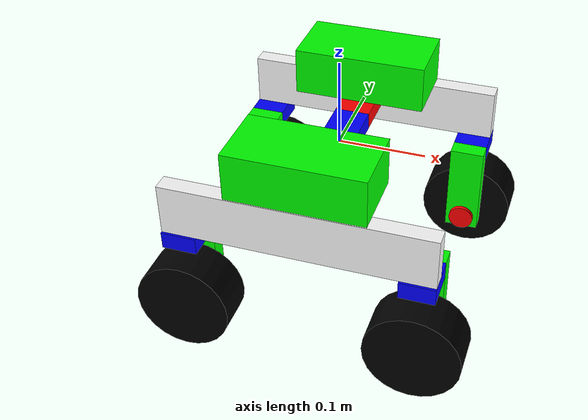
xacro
<?xml version="1.0"?>
<robot xmlns:xacro="http://www.ros.org/wiki/xacro" name="robot_name">

    <!-- Colours -->
    <material name="green">
        <color rgba="0.0 1.0 0.0 1"/>
    </material>

    <material name="white">
        <color rgba="1 1 1 1"/>
    </material>

    <material name="black">
        <color rgba="0 0 0 1"/>
    </material>

    <material name="red">
        <color rgba="1.0 0.0 0.0 1"/>
    </material>

    <material name="blue">
        <color rgba="0.0 0.0 1 1.0"/>
    </material>

    <!-- Physics -->
    <xacro:property name="base_effort" value="100"/>
    <xacro:property name="base_velocity" value="0.5"/>

    <!-- Inertial macros -->
    <xacro:macro name="default_inertial" params="mass">
        <inertial>
        <mass value="${mass}" />
        <inertia ixx="1.0" ixy="0.0" ixz="0.0" iyy="1.0" iyz="0.0" izz="1.0" />
        </inertial>
    </xacro:macro>

    <!-- Measurements -->

    <!-- Side of the robot -->
    <xacro:property name="shoulder_box_x" value="0.155"/>
    <xacro:property name="shoulder_box_y" value="0.080"/>
    <xacro:property name="shoulder_box_z" value="0.055"/>

    <xacro:property name="shoulder_horizontal_x" value="0.040"/>
    <xacro:property name="shoulder_horizontal_y" value="0.085"/>
    <xacro:property name="shoulder_horizontal_z" value="0.020"/>

    <xacro:property name="shoulder_vertical_x" value="0.305"/>
    <xacro:property name="shoulder_vertical_y" value="0.020"/>
    <xacro:property name="shoulder_vertical_z" value="0.060"/>

    <xacro:property name="leg_horizontal_x" value="0.040"/>
    <xacro:property name="leg_horizontal_y" value="0.045"/>
    <xacro:property name="leg_horizontal_z" value="0.020"/>

    <xacro:property name="leg_vertical_x" value="0.040"/>
    <xacro:property name="leg_vertical_y" value="0.020"/>
    <xacro:property name="leg_vertical_z" value="0.110"/>

    <xacro:property name="axle_radius" value="0.015"/>
    <xacro:property name="axle_length" value="0.030"/>

    <!-- Center of the robot -->
    <xacro:property name="centre_box_x" value="0.040"/>
    <xacro:property name="centre_box_y" value="0.100"/>
    <xacro:property name="centre_box_z" value="0.020"/>

    <!-- Wheel measurements -->
    <xacro:property name="wheel_radius" value="0.055"/>
    <xacro:property name="wheel_length" value="0.050"/>

    <!-- Base link -->
    <link name="base_link">
        <xacro:default_inertial mass="1"/>
        <visual>
            <origin xyz="0.0 0.0 0.0"/>
            <geometry>
                <box size="
                    ${centre_box_x}
                    ${centre_box_y}
                    ${centre_box_z}"/>
            </geometry>
            <material name="blue"/>
       </visual>
        <collision>
            <origin xyz="0.0 0.0 0.0"/>
            <geometry>
                <box size="
                    ${centre_box_x}
                    ${centre_box_y}
                    ${centre_box_z}"/>
            </geometry>
        </collision>

    </link>

    <xacro:macro name="shoulder" params="prefix suffix reflect_y">
        <link name="${prefix}_shoulder_horizontal">
            <xacro:default_inertial mass="1"/>
            <visual>
                <origin xyz="0.0 0.0 0.0"/>
                <geometry>
                    <box size="${shoulder_horizontal_x}
                    ${shoulder_horizontal_y}
                    ${shoulder_horizontal_z}"/>
                </geometry>
                <material name="red"/>
            </visual>
            <collision>
            <xacro:default_inertial mass="1"/>
                <origin xyz="0.0 0.0 0.0"/>
                <geometry>
                    <box size="${shoulder_horizontal_x}
                    ${shoulder_horizontal_y}
                    ${shoulder_horizontal_z}"/>
                </geometry>
            </collision>
        </link>

        <joint name="${prefix}_shoulder_horizontal_base" type="continuous">
            <origin xyz="
            0.0
            ${reflect_y *((shoulder_horizontal_y / 2) + (centre_box_y / 2))}
            0.0"/>
            <parent link="base_link"/>
            <child link="${prefix}_shoulder_horizontal"/>
            <axis xyz="0 1 0"/>
        </joint>

        <link name="${prefix}_shoulder_box">
            <xacro:default_inertial mass="1"/>
            <visual>
                <origin xyz="0.0 0.0 0.0"/>
                <geometry>
                    <box size="
                        ${shoulder_box_x}
                        ${shoulder_box_y}
                        ${shoulder_box_z}"
                    />
                </geometry>
                <material name="green"/>
            </visual>
            <collision>
                <origin xyz="0.0 0.0 0.0"/>
                <geometry>
                    <box size="
                        ${shoulder_box_x}
                        ${shoulder_box_y}
                        ${shoulder_box_z}"
                    />
                </geometry>
            </collision>
        </link>

        <joint name="${prefix}_shoulder_box_shoulder" type="fixed">
            <origin xyz="
            0
            ${reflect_y * (shoulder_horizontal_y / 4)}
            ${(shoulder_horizontal_z / 2) + (shoulder_box_z / 2)}"/>
            <parent link="${prefix}_shoulder_horizontal"/>
            <child link="${prefix}_shoulder_box"/>
        </joint>

        <link name="${prefix}_shoulder_vertical">
            <xacro:default_inertial mass="1"/>
            <visual>
                <origin xyz="0 0.0 0.0" />
                <geometry>
                    <box size="
                    ${shoulder_vertical_x}
                    ${shoulder_vertical_y}
                    ${shoulder_vertical_z}"/>
                </geometry>
                <material name="white"/>
            </visual>
            <collision>
                <origin xyz="0 0.0 0.0" />
                <geometry>
                    <box size="
                    ${shoulder_vertical_x}
                    ${shoulder_vertical_y}
                    ${shoulder_vertical_z}"/>
                </geometry>
            </collision>
        </link>

        <joint name="${prefix}_shoulder_joint" type="fixed">
            <origin xyz="
            0
            ${reflect_y * ((shoulder_horizontal_y / 2) + (shoulder_vertical_y / 2))}
            ${-1 * (shoulder_vertical_z/2 - shoulder_horizontal_z/2)}"/>
            <parent link="${prefix}_shoulder_horizontal"/>
            <child link="${prefix}_shoulder_vertical"/>
        </joint>
    </xacro:macro>

    <xacro:macro name="caster" params="prefix suffix reflect_x reflect_y">
        <link name="${prefix}_${suffix}_caster_horizontal">
            <xacro:default_inertial mass="1"/>
            <visual>
                <origin xyz="0 0.0 0.0" />
                <geometry>
                    <box size="
                        ${leg_horizontal_x}
                        ${leg_horizontal_y}
                        ${leg_horizontal_z}"/>
                </geometry>
                <material name="blue"/>
            </visual>
            <collision>
                <origin xyz="0 0.0 0.0" />
                <geometry>
                    <box size="
                        ${leg_horizontal_x}
                        ${leg_horizontal_y}
                        ${leg_horizontal_z}"/>
                </geometry>
                <material name="blue"/>
            </collision>
        </link>
        <joint name="${prefix}_${suffix}_caster_to_shoulder" type="continuous">
            <origin xyz="
                ${reflect_x * ((shoulder_vertical_x / 2) - (leg_horizontal_x/2))}
                ${reflect_y * (-shoulder_vertical_y /2)}
                ${-1 * (shoulder_vertical_z / 2 + leg_horizontal_z / 2)}
                "/>
            <parent link="${prefix}_shoulder_vertical"/>
            <child link="${prefix}_${suffix}_caster_horizontal"/>
            <axis xyz="0 0 1"/>
        </joint>

        <link name="${prefix}_${suffix}_caster_vertical">
            <xacro:default_inertial mass="1"/>
            <visual>
                <origin xyz="0.0 0.0 0.0"/>
                <geometry>
                    <box size="
                        ${leg_vertical_x}
                        ${leg_vertical_y}
                        ${leg_vertical_z}"/>
                </geometry>
                <material name="green"/>
            </visual>
            <collision>
                <origin xyz="0.0 0.0 0.0"/>
                <geometry>
                    <box size="
                        ${leg_vertical_x}
                        ${leg_vertical_y}
                        ${leg_vertical_z}"/>
                </geometry>
            </collision>
        </link>

        <joint name="${prefix}_${suffix}_caster_joint" type="fixed">
            <origin xyz="
                0
                ${-reflect_y * (leg_horizontal_y/2 + leg_vertical_y/2)}
                ${-1 * (leg_vertical_z/2 - leg_horizontal_z/2) }"/>
            <parent link="${prefix}_${suffix}_caster_horizontal"/>
            <child link="${prefix}_${suffix}_caster_vertical"/>
        </joint>

        <link name="${prefix}_${suffix}_axle">
            <xacro:default_inertial mass="1"/>
            <visual>
                <origin rpy="${pi/2} 0.0 0.0"/>
                <geometry>
                    <cylinder radius="${axle_radius}" length="${axle_length}"/>
                </geometry>
                <material name="red"/>
            </visual>
            <collision>
                <origin xyz="0.0 0.0 0.0"/>
                <geometry>
                    <cylinder radius="${axle_radius}" length="${axle_length}"/>
                </geometry>
            </collision>
        </link>

        <joint name="${prefix}_${suffix}_axle_to_caster" type="fixed">
            <origin xyz="
                0
                0
                ${-1 * (leg_vertical_z/2 - axle_radius)}"/>
            <parent link="${prefix}_${suffix}_caster_vertical"/>
            <child link="${prefix}_${suffix}_axle"/>
        </joint>

        <xacro:wheel prefix="${prefix}" suffix="${suffix}" reflect_y="${reflect_y}"/>

    </xacro:macro>

    <xacro:macro name="wheel" params="prefix suffix reflect_y">
        <link name="${prefix}_${suffix}_wheel_link">
            <xacro:default_inertial mass="1"/>
            <visual>
                <origin rpy="${pi/2} 0.0 0.0"/>
                <geometry>
                    <cylinder radius="${wheel_radius}" length="${wheel_length}"/>
                </geometry>
                <material name="black"/>
            </visual>
            <collision>
                <origin rpy="${pi/2} 0.0 0.0"/>
                <geometry>
                    <cylinder radius="${wheel_radius}" length="${wheel_length}"/>
                </geometry>
            </collision>
        </link>

        <joint name="${prefix}_${suffix}_wheel" type="continuous">
            <origin xyz="0 ${reflect_y * (wheel_length/2 + axle_length/2)} 0"/>
            <parent link="${prefix}_${suffix}_axle"/>
            <child link="${prefix}_${suffix}_wheel_link"/>
            <axis xyz="0 1 0"/>
        </joint>
    </xacro:macro>

    <xacro:shoulder prefix="right" suffix="front" reflect_y="-1"/>
    <xacro:shoulder prefix="left" suffix="front" reflect_y="1"/>
    <xacro:caster prefix="right" suffix="front" reflect_x="1" reflect_y="-1"/>
    <xacro:caster prefix="left" suffix="front" reflect_x="1" reflect_y="1"/>
    <xacro:caster prefix="right" suffix="back" reflect_x="-1" reflect_y="-1"/>
    <xacro:caster prefix="left" suffix="back" reflect_x="-1" reflect_y="1"/>

</robot>
